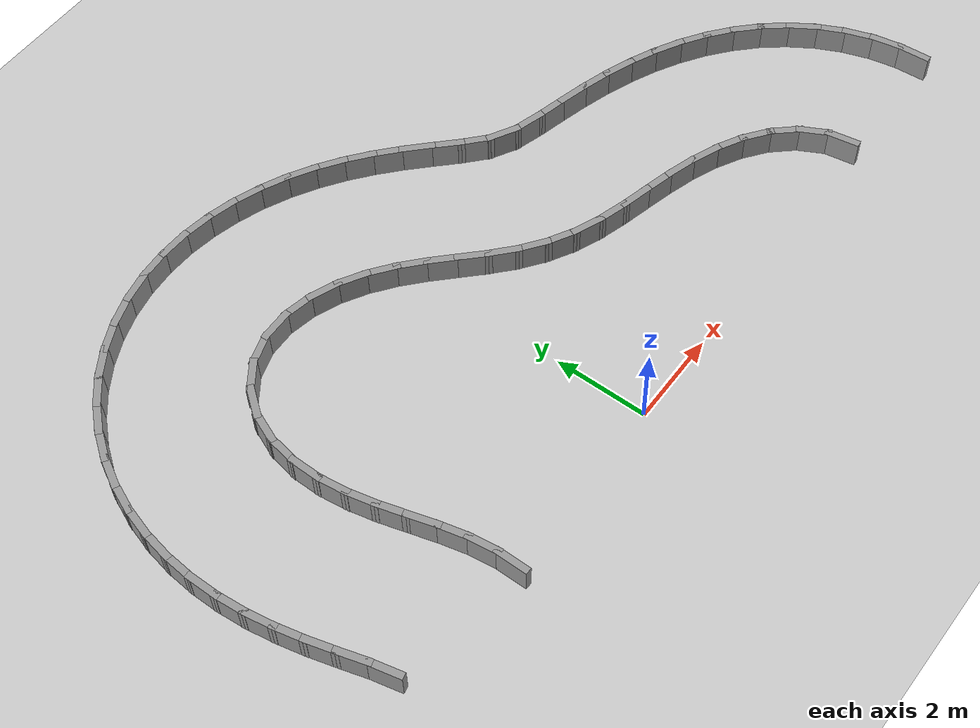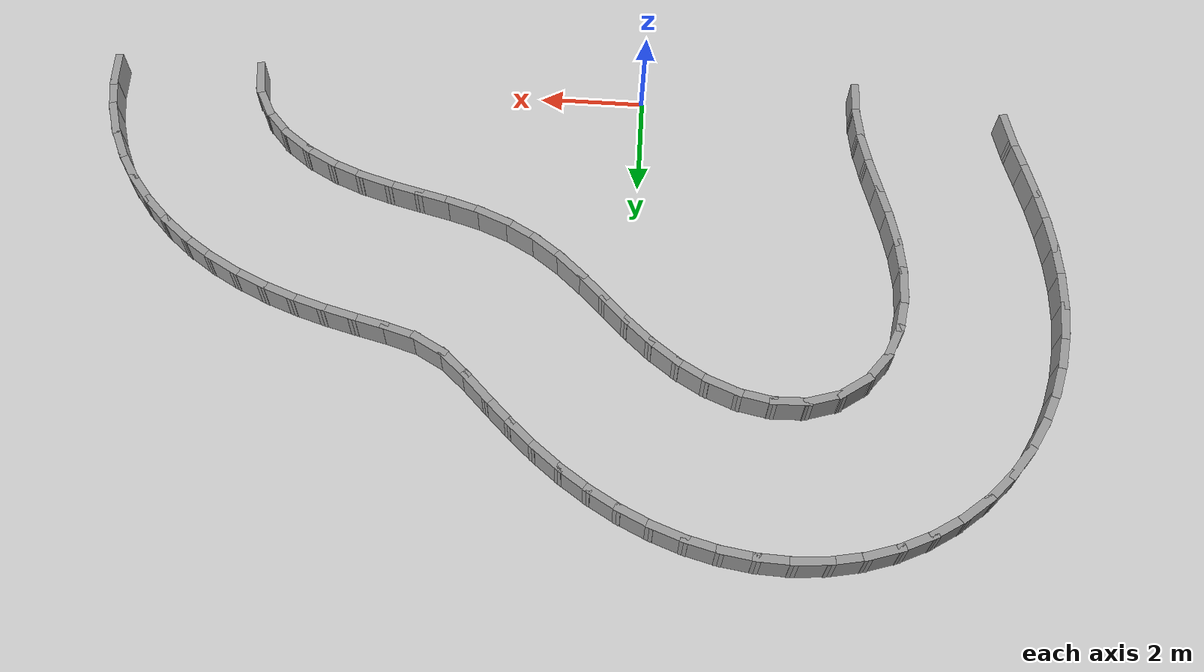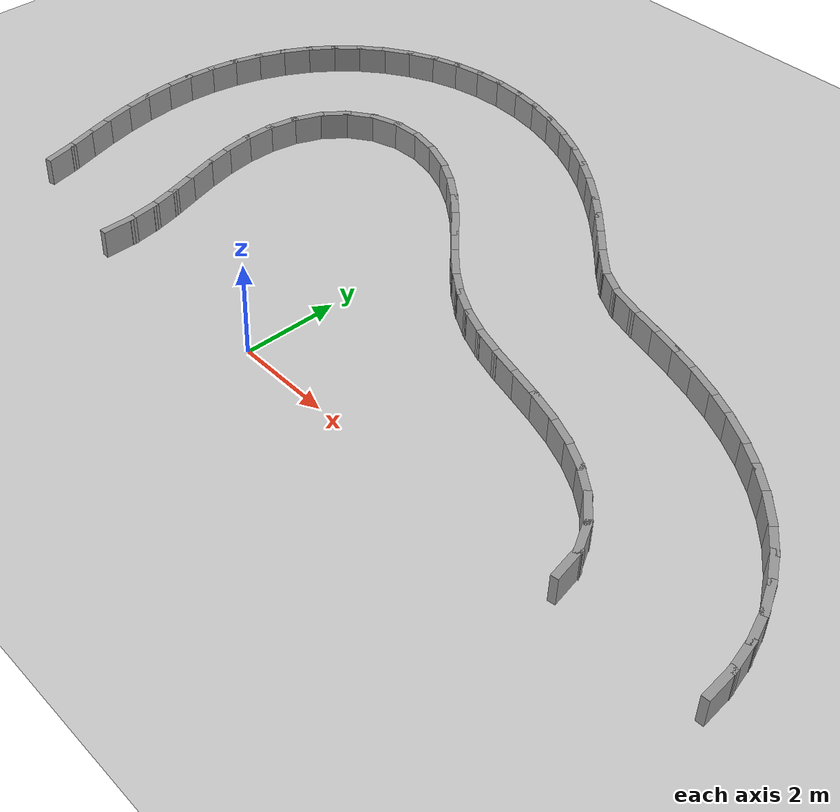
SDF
<sdf version="1.7">
 <world name="default">
  <model name="ground_plane">
   <static>1</static>
   <link name="link">
    <collision name="collision">
     <geometry><plane><normal>0 0 1</normal><size>100 100</size></plane></geometry>
     <surface><friction><ode><mu>100</mu><mu2>50</mu2></ode></friction></surface>
    </collision>
    <visual name="visual">
     <cast_shadows>0</cast_shadows>
     <geometry><plane><normal>0 0 1</normal><size>100 100</size></plane></geometry>
     <material>
      <script><uri>file://media/materials/scripts/gazebo.material</uri><name>Gazebo/Grey</name></script>
     </material>
    </visual>
   </link>
  </model>
  <model name="rand_lobed_09">
   <link name="Wall_0">
    <collision name="Wall_0_Collision">
     <geometry><box><size>0.7471 0.1500 0.6000</size></box></geometry>
     <pose>0 0 0.3000 0 -0 0</pose>
    </collision>
    <visual name="Wall_0_Visual">
     <pose>0 0 0.3000 0 -0 0</pose>
     <geometry><box><size>0.7471 0.1500 0.6000</size></box></geometry>
     <material>
      <script><uri>file://media/materials/scripts/gazebo.material</uri><name>Gazebo/Grey</name></script>
      <ambient>1 1 1 1</ambient>
     </material>
    </visual>
    <pose>7.5078 0.2942 0 0 -0 1.74248</pose>
   </link>
   <link name="Wall_1">
    <collision name="Wall_1_Collision">
     <geometry><box><size>0.7480 0.1500 0.6000</size></box></geometry>
     <pose>0 0 0.3000 0 -0 0</pose>
    </collision>
    <visual name="Wall_1_Visual">
     <pose>0 0 0.3000 0 -0 0</pose>
     <geometry><box><size>0.7480 0.1500 0.6000</size></box></geometry>
     <material>
      <script><uri>file://media/materials/scripts/gazebo.material</uri><name>Gazebo/Grey</name></script>
      <ambient>1 1 1 1</ambient>
     </material>
    </visual>
    <pose>7.3180 0.8532 0 0 -0 2.05335</pose>
   </link>
   <link name="Wall_2">
    <collision name="Wall_2_Collision">
     <geometry><box><size>0.7488 0.1500 0.6000</size></box></geometry>
     <pose>0 0 0.3000 0 -0 0</pose>
    </collision>
    <visual name="Wall_2_Visual">
     <pose>0 0 0.3000 0 -0 0</pose>
     <geometry><box><size>0.7488 0.1500 0.6000</size></box></geometry>
     <material>
      <script><uri>file://media/materials/scripts/gazebo.material</uri><name>Gazebo/Grey</name></script>
      <ambient>1 1 1 1</ambient>
     </material>
    </visual>
    <pose>6.9795 1.3411 0 0 -0 2.30128</pose>
   </link>
   <link name="Wall_3">
    <collision name="Wall_3_Collision">
     <geometry><box><size>0.7493 0.1500 0.6000</size></box></geometry>
     <pose>0 0 0.3000 0 -0 0</pose>
    </collision>
    <visual name="Wall_3_Visual">
     <pose>0 0 0.3000 0 -0 0</pose>
     <geometry><box><size>0.7493 0.1500 0.6000</size></box></geometry>
     <material>
      <script><uri>file://media/materials/scripts/gazebo.material</uri><name>Gazebo/Grey</name></script>
      <ambient>1 1 1 1</ambient>
     </material>
    </visual>
    <pose>6.5408 1.7450 0 0 -0 2.49363</pose>
   </link>
   <link name="Wall_4">
    <collision name="Wall_4_Collision">
     <geometry><box><size>0.7496 0.1500 0.6000</size></box></geometry>
     <pose>0 0 0.3000 0 -0 0</pose>
    </collision>
    <visual name="Wall_4_Visual">
     <pose>0 0 0.3000 0 -0 0</pose>
     <geometry><box><size>0.7496 0.1500 0.6000</size></box></geometry>
     <material>
      <script><uri>file://media/materials/scripts/gazebo.material</uri><name>Gazebo/Grey</name></script>
      <ambient>1 1 1 1</ambient>
     </material>
    </visual>
    <pose>6.0385 2.0689 0 0 -0 2.64404</pose>
   </link>
   <link name="Wall_5">
    <collision name="Wall_5_Collision">
     <geometry><box><size>0.7497 0.1500 0.6000</size></box></geometry>
     <pose>0 0 0.3000 0 -0 0</pose>
    </collision>
    <visual name="Wall_5_Visual">
     <pose>0 0 0.3000 0 -0 0</pose>
     <geometry><box><size>0.7497 0.1500 0.6000</size></box></geometry>
     <material>
      <script><uri>file://media/materials/scripts/gazebo.material</uri><name>Gazebo/Grey</name></script>
      <ambient>1 1 1 1</ambient>
     </material>
    </visual>
    <pose>5.4967 2.3235 0 0 -0 2.76055</pose>
   </link>
   <link name="Wall_6">
    <collision name="Wall_6_Collision">
     <geometry><box><size>0.7499 0.1500 0.6000</size></box></geometry>
     <pose>0 0 0.3000 0 -0 0</pose>
    </collision>
    <visual name="Wall_6_Visual">
     <pose>0 0 0.3000 0 -0 0</pose>
     <geometry><box><size>0.7499 0.1500 0.6000</size></box></geometry>
     <material>
      <script><uri>file://media/materials/scripts/gazebo.material</uri><name>Gazebo/Grey</name></script>
      <ambient>1 1 1 1</ambient>
     </material>
    </visual>
    <pose>4.9315 2.5226 0 0 -0 2.84526</pose>
   </link>
   <link name="Wall_7">
    <collision name="Wall_7_Collision">
     <geometry><box><size>0.7500 0.1500 0.6000</size></box></geometry>
     <pose>0 0 0.3000 0 -0 0</pose>
    </collision>
    <visual name="Wall_7_Visual">
     <pose>0 0 0.3000 0 -0 0</pose>
     <geometry><box><size>0.7500 0.1500 0.6000</size></box></geometry>
     <material>
      <script><uri>file://media/materials/scripts/gazebo.material</uri><name>Gazebo/Grey</name></script>
      <ambient>1 1 1 1</ambient>
     </material>
    </visual>
    <pose>4.3537 2.6837 0 0 -0 2.89428</pose>
   </link>
   <link name="Wall_8">
    <collision name="Wall_8_Collision">
     <geometry><box><size>0.7500 0.1500 0.6000</size></box></geometry>
     <pose>0 0 0.3000 0 -0 0</pose>
    </collision>
    <visual name="Wall_8_Visual">
     <pose>0 0 0.3000 0 -0 0</pose>
     <geometry><box><size>0.7500 0.1500 0.6000</size></box></geometry>
     <material>
      <script><uri>file://media/materials/scripts/gazebo.material</uri><name>Gazebo/Grey</name></script>
      <ambient>1 1 1 1</ambient>
     </material>
    </visual>
    <pose>3.7717 2.8291 0 0 -0 2.89908</pose>
   </link>
   <link name="Wall_9">
    <collision name="Wall_9_Collision">
     <geometry><box><size>0.7499 0.1500 0.6000</size></box></geometry>
     <pose>0 0 0.3000 0 -0 0</pose>
    </collision>
    <visual name="Wall_9_Visual">
     <pose>0 0 0.3000 0 -0 0</pose>
     <geometry><box><size>0.7499 0.1500 0.6000</size></box></geometry>
     <material>
      <script><uri>file://media/materials/scripts/gazebo.material</uri><name>Gazebo/Grey</name></script>
      <ambient>1 1 1 1</ambient>
     </material>
    </visual>
    <pose>3.1930 2.9868 0 0 -0 2.85210</pose>
   </link>
   <link name="Wall_10">
    <collision name="Wall_10_Collision">
     <geometry><box><size>0.7497 0.1500 0.6000</size></box></geometry>
     <pose>0 0 0.3000 0 -0 0</pose>
    </collision>
    <visual name="Wall_10_Visual">
     <pose>0 0 0.3000 0 -0 0</pose>
     <geometry><box><size>0.7497 0.1500 0.6000</size></box></geometry>
     <material>
      <script><uri>file://media/materials/scripts/gazebo.material</uri><name>Gazebo/Grey</name></script>
      <ambient>1 1 1 1</ambient>
     </material>
    </visual>
    <pose>2.6277 3.1850 0 0 -0 2.75660</pose>
   </link>
   <link name="Wall_11">
    <collision name="Wall_11_Collision">
     <geometry><box><size>0.7496 0.1500 0.6000</size></box></geometry>
     <pose>0 0 0.3000 0 -0 0</pose>
    </collision>
    <visual name="Wall_11_Visual">
     <pose>0 0 0.3000 0 -0 0</pose>
     <geometry><box><size>0.7496 0.1500 0.6000</size></box></geometry>
     <material>
      <script><uri>file://media/materials/scripts/gazebo.material</uri><name>Gazebo/Grey</name></script>
      <ambient>1 1 1 1</ambient>
     </material>
    </visual>
    <pose>2.0882 3.4440 0 0 -0 2.63130</pose>
   </link>
   <link name="Wall_12">
    <collision name="Wall_12_Collision">
     <geometry><box><size>0.7497 0.1500 0.6000</size></box></geometry>
     <pose>0 0 0.3000 0 -0 0</pose>
    </collision>
    <visual name="Wall_12_Visual">
     <pose>0 0 0.3000 0 -0 0</pose>
     <geometry><box><size>0.7497 0.1500 0.6000</size></box></geometry>
     <material>
      <script><uri>file://media/materials/scripts/gazebo.material</uri><name>Gazebo/Grey</name></script>
      <ambient>1 1 1 1</ambient>
     </material>
    </visual>
    <pose>1.5855 3.7688 0 0 -0 2.50470</pose>
   </link>
   <link name="Wall_13">
    <collision name="Wall_13_Collision">
     <geometry><box><size>0.7499 0.1500 0.6000</size></box></geometry>
     <pose>0 0 0.3000 0 -0 0</pose>
    </collision>
    <visual name="Wall_13_Visual">
     <pose>0 0 0.3000 0 -0 0</pose>
     <geometry><box><size>0.7499 0.1500 0.6000</size></box></geometry>
     <material>
      <script><uri>file://media/materials/scripts/gazebo.material</uri><name>Gazebo/Grey</name></script>
      <ambient>1 1 1 1</ambient>
     </material>
    </visual>
    <pose>1.1221 4.1483 0 0 -0 2.40606</pose>
   </link>
   <link name="Wall_14">
    <collision name="Wall_14_Collision">
     <geometry><box><size>0.7500 0.1500 0.6000</size></box></geometry>
     <pose>0 0 0.3000 0 -0 0</pose>
    </collision>
    <visual name="Wall_14_Visual">
     <pose>0 0 0.3000 0 -0 0</pose>
     <geometry><box><size>0.7500 0.1500 0.6000</size></box></geometry>
     <material>
      <script><uri>file://media/materials/scripts/gazebo.material</uri><name>Gazebo/Grey</name></script>
      <ambient>1 1 1 1</ambient>
     </material>
    </visual>
    <pose>0.6876 4.5617 0 0 -0 2.35609</pose>
   </link>
   <link name="Wall_15">
    <collision name="Wall_15_Collision">
     <geometry><box><size>0.7500 0.1500 0.6000</size></box></geometry>
     <pose>0 0 0.3000 0 -0 0</pose>
    </collision>
    <visual name="Wall_15_Visual">
     <pose>0 0 0.3000 0 -0 0</pose>
     <geometry><box><size>0.7500 0.1500 0.6000</size></box></geometry>
     <material>
      <script><uri>file://media/materials/scripts/gazebo.material</uri><name>Gazebo/Grey</name></script>
      <ambient>1 1 1 1</ambient>
     </material>
    </visual>
    <pose>0.2626 4.9852 0 0 -0 2.35991</pose>
   </link>
   <link name="Wall_16">
    <collision name="Wall_16_Collision">
     <geometry><box><size>0.7499 0.1500 0.6000</size></box></geometry>
     <pose>0 0 0.3000 0 -0 0</pose>
    </collision>
    <visual name="Wall_16_Visual">
     <pose>0 0 0.3000 0 -0 0</pose>
     <geometry><box><size>0.7499 0.1500 0.6000</size></box></geometry>
     <material>
      <script><uri>file://media/materials/scripts/gazebo.material</uri><name>Gazebo/Grey</name></script>
      <ambient>1 1 1 1</ambient>
     </material>
    </visual>
    <pose>-0.1735 5.3969 0 0 -0 2.41019</pose>
   </link>
   <link name="Wall_17">
    <collision name="Wall_17_Collision">
     <geometry><box><size>0.7497 0.1500 0.6000</size></box></geometry>
     <pose>0 0 0.3000 0 -0 0</pose>
    </collision>
    <visual name="Wall_17_Visual">
     <pose>0 0 0.3000 0 -0 0</pose>
     <geometry><box><size>0.7497 0.1500 0.6000</size></box></geometry>
     <material>
      <script><uri>file://media/materials/scripts/gazebo.material</uri><name>Gazebo/Grey</name></script>
      <ambient>1 1 1 1</ambient>
     </material>
    </visual>
    <pose>-0.6365 5.7773 0 0 -0 2.49728</pose>
   </link>
   <link name="Wall_18">
    <collision name="Wall_18_Collision">
     <geometry><box><size>0.7496 0.1500 0.6000</size></box></geometry>
     <pose>0 0 0.3000 0 -0 0</pose>
    </collision>
    <visual name="Wall_18_Visual">
     <pose>0 0 0.3000 0 -0 0</pose>
     <geometry><box><size>0.7496 0.1500 0.6000</size></box></geometry>
     <material>
      <script><uri>file://media/materials/scripts/gazebo.material</uri><name>Gazebo/Grey</name></script>
      <ambient>1 1 1 1</ambient>
     </material>
    </visual>
    <pose>-1.1355 6.1080 0 0 -0 2.61554</pose>
   </link>
   <link name="Wall_19">
    <collision name="Wall_19_Collision">
     <geometry><box><size>0.7493 0.1500 0.6000</size></box></geometry>
     <pose>0 0 0.3000 0 -0 0</pose>
    </collision>
    <visual name="Wall_19_Visual">
     <pose>0 0 0.3000 0 -0 0</pose>
     <geometry><box><size>0.7493 0.1500 0.6000</size></box></geometry>
     <material>
      <script><uri>file://media/materials/scripts/gazebo.material</uri><name>Gazebo/Grey</name></script>
      <ambient>1 1 1 1</ambient>
     </material>
    </visual>
    <pose>-1.6734 6.3688 0 0 -0 2.76470</pose>
   </link>
   <link name="Wall_20">
    <collision name="Wall_20_Collision">
     <geometry><box><size>0.7490 0.1500 0.6000</size></box></geometry>
     <pose>0 0 0.3000 0 -0 0</pose>
    </collision>
    <visual name="Wall_20_Visual">
     <pose>0 0 0.3000 0 -0 0</pose>
     <geometry><box><size>0.7490 0.1500 0.6000</size></box></geometry>
     <material>
      <script><uri>file://media/materials/scripts/gazebo.material</uri><name>Gazebo/Grey</name></script>
      <ambient>1 1 1 1</ambient>
     </material>
    </visual>
    <pose>-2.2459 6.5364 0 0 -0 2.94902</pose>
   </link>
   <link name="Wall_21">
    <collision name="Wall_21_Collision">
     <geometry><box><size>0.7484 0.1500 0.6000</size></box></geometry>
     <pose>0 0 0.3000 0 -0 0</pose>
    </collision>
    <visual name="Wall_21_Visual">
     <pose>0 0 0.3000 0 -0 0</pose>
     <geometry><box><size>0.7484 0.1500 0.6000</size></box></geometry>
     <material>
      <script><uri>file://media/materials/scripts/gazebo.material</uri><name>Gazebo/Grey</name></script>
      <ambient>1 1 1 1</ambient>
     </material>
    </visual>
    <pose>-2.8389 6.5833 0 0 -0 -3.10686</pose>
   </link>
   <link name="Wall_22">
    <collision name="Wall_22_Collision">
     <geometry><box><size>0.7478 0.1500 0.6000</size></box></geometry>
     <pose>0 0 0.3000 0 -0 0</pose>
    </collision>
    <visual name="Wall_22_Visual">
     <pose>0 0 0.3000 0 -0 0</pose>
     <geometry><box><size>0.7478 0.1500 0.6000</size></box></geometry>
     <material>
      <script><uri>file://media/materials/scripts/gazebo.material</uri><name>Gazebo/Grey</name></script>
      <ambient>1 1 1 1</ambient>
     </material>
    </visual>
    <pose>-3.4226 6.4817 0 0 -0 -2.83146</pose>
   </link>
   <link name="Wall_23">
    <collision name="Wall_23_Collision">
     <geometry><box><size>0.7475 0.1500 0.6000</size></box></geometry>
     <pose>0 0 0.3000 0 -0 0</pose>
    </collision>
    <visual name="Wall_23_Visual">
     <pose>0 0 0.3000 0 -0 0</pose>
     <geometry><box><size>0.7475 0.1500 0.6000</size></box></geometry>
     <material>
      <script><uri>file://media/materials/scripts/gazebo.material</uri><name>Gazebo/Grey</name></script>
      <ambient>1 1 1 1</ambient>
     </material>
    </visual>
    <pose>-3.9504 6.2169 0 0 -0 -2.52177</pose>
   </link>
   <link name="Wall_24">
    <collision name="Wall_24_Collision">
     <geometry><box><size>0.7479 0.1500 0.6000</size></box></geometry>
     <pose>0 0 0.3000 0 -0 0</pose>
    </collision>
    <visual name="Wall_24_Visual">
     <pose>0 0 0.3000 0 -0 0</pose>
     <geometry><box><size>0.7479 0.1500 0.6000</size></box></geometry>
     <material>
      <script><uri>file://media/materials/scripts/gazebo.material</uri><name>Gazebo/Grey</name></script>
      <ambient>1 1 1 1</ambient>
     </material>
    </visual>
    <pose>-4.3738 5.8048 0 0 -0 -2.21781</pose>
   </link>
   <link name="Wall_25">
    <collision name="Wall_25_Collision">
     <geometry><box><size>0.7486 0.1500 0.6000</size></box></geometry>
     <pose>0 0 0.3000 0 -0 0</pose>
    </collision>
    <visual name="Wall_25_Visual">
     <pose>0 0 0.3000 0 -0 0</pose>
     <geometry><box><size>0.7486 0.1500 0.6000</size></box></geometry>
     <material>
      <script><uri>file://media/materials/scripts/gazebo.material</uri><name>Gazebo/Grey</name></script>
      <ambient>1 1 1 1</ambient>
     </material>
    </visual>
    <pose>-4.6664 5.2889 0 0 -0 -1.95575</pose>
   </link>
   <link name="Wall_26">
    <collision name="Wall_26_Collision">
     <geometry><box><size>0.7491 0.1500 0.6000</size></box></geometry>
     <pose>0 0 0.3000 0 -0 0</pose>
    </collision>
    <visual name="Wall_26_Visual">
     <pose>0 0 0.3000 0 -0 0</pose>
     <geometry><box><size>0.7491 0.1500 0.6000</size></box></geometry>
     <material>
      <script><uri>file://media/materials/scripts/gazebo.material</uri><name>Gazebo/Grey</name></script>
      <ambient>1 1 1 1</ambient>
     </material>
    </visual>
    <pose>-4.8304 4.7164 0 0 -0 -1.74390</pose>
   </link>
   <link name="Wall_27">
    <collision name="Wall_27_Collision">
     <geometry><box><size>0.7494 0.1500 0.6000</size></box></geometry>
     <pose>0 0 0.3000 0 -0 0</pose>
    </collision>
    <visual name="Wall_27_Visual">
     <pose>0 0 0.3000 0 -0 0</pose>
     <geometry><box><size>0.7494 0.1500 0.6000</size></box></geometry>
     <material>
      <script><uri>file://media/materials/scripts/gazebo.material</uri><name>Gazebo/Grey</name></script>
      <ambient>1 1 1 1</ambient>
     </material>
    </visual>
    <pose>-4.8835 4.1216 0 0 -0 -1.57599</pose>
   </link>
   <link name="Wall_28">
    <collision name="Wall_28_Collision">
     <geometry><box><size>0.7497 0.1500 0.6000</size></box></geometry>
     <pose>0 0 0.3000 0 -0 0</pose>
    </collision>
    <visual name="Wall_28_Visual">
     <pose>0 0 0.3000 0 -0 0</pose>
     <geometry><box><size>0.7497 0.1500 0.6000</size></box></geometry>
     <material>
      <script><uri>file://media/materials/scripts/gazebo.material</uri><name>Gazebo/Grey</name></script>
      <ambient>1 1 1 1</ambient>
     </material>
    </visual>
    <pose>-4.8476 3.5244 0 0 -0 -1.44555</pose>
   </link>
   <link name="Wall_29">
    <collision name="Wall_29_Collision">
     <geometry><box><size>0.7499 0.1500 0.6000</size></box></geometry>
     <pose>0 0 0.3000 0 -0 0</pose>
    </collision>
    <visual name="Wall_29_Visual">
     <pose>0 0 0.3000 0 -0 0</pose>
     <geometry><box><size>0.7499 0.1500 0.6000</size></box></geometry>
     <material>
      <script><uri>file://media/materials/scripts/gazebo.material</uri><name>Gazebo/Grey</name></script>
      <ambient>1 1 1 1</ambient>
     </material>
    </visual>
    <pose>-4.7447 2.9342 0 0 -0 -1.35069</pose>
   </link>
   <link name="Wall_30">
    <collision name="Wall_30_Collision">
     <geometry><box><size>0.7500 0.1500 0.6000</size></box></geometry>
     <pose>0 0 0.3000 0 -0 0</pose>
    </collision>
    <visual name="Wall_30_Visual">
     <pose>0 0 0.3000 0 -0 0</pose>
     <geometry><box><size>0.7500 0.1500 0.6000</size></box></geometry>
     <material>
      <script><uri>file://media/materials/scripts/gazebo.material</uri><name>Gazebo/Grey</name></script>
      <ambient>1 1 1 1</ambient>
     </material>
    </visual>
    <pose>-4.5976 2.3529 0 0 -0 -1.29547</pose>
   </link>
   <link name="Wall_31">
    <collision name="Wall_31_Collision">
     <geometry><box><size>0.7500 0.1500 0.6000</size></box></geometry>
     <pose>0 0 0.3000 0 -0 0</pose>
    </collision>
    <visual name="Wall_31_Visual">
     <pose>0 0 0.3000 0 -0 0</pose>
     <geometry><box><size>0.7500 0.1500 0.6000</size></box></geometry>
     <material>
      <script><uri>file://media/materials/scripts/gazebo.material</uri><name>Gazebo/Grey</name></script>
      <ambient>1 1 1 1</ambient>
     </material>
    </visual>
    <pose>-4.4326 1.7760 0 0 -0 -1.28864</pose>
   </link>
   <link name="Wall_32">
    <collision name="Wall_32_Collision">
     <geometry><box><size>0.7499 0.1500 0.6000</size></box></geometry>
     <pose>0 0 0.3000 0 -0 0</pose>
    </collision>
    <visual name="Wall_32_Visual">
     <pose>0 0 0.3000 0 -0 0</pose>
     <geometry><box><size>0.7499 0.1500 0.6000</size></box></geometry>
     <material>
      <script><uri>file://media/materials/scripts/gazebo.material</uri><name>Gazebo/Grey</name></script>
      <ambient>1 1 1 1</ambient>
     </material>
    </visual>
    <pose>-4.2797 1.1961 0 0 -0 -1.33762</pose>
   </link>
   <link name="Wall_33">
    <collision name="Wall_33_Collision">
     <geometry><box><size>0.7496 0.1500 0.6000</size></box></geometry>
     <pose>0 0 0.3000 0 -0 0</pose>
    </collision>
    <visual name="Wall_33_Visual">
     <pose>0 0 0.3000 0 -0 0</pose>
     <geometry><box><size>0.7496 0.1500 0.6000</size></box></geometry>
     <material>
      <script><uri>file://media/materials/scripts/gazebo.material</uri><name>Gazebo/Grey</name></script>
      <ambient>1 1 1 1</ambient>
     </material>
    </visual>
    <pose>-4.1707 0.6071 0 0 -0 -1.43780</pose>
   </link>
   <link name="Wall_34">
    <collision name="Wall_34_Collision">
     <geometry><box><size>0.7495 0.1500 0.6000</size></box></geometry>
     <pose>0 0 0.3000 0 -0 0</pose>
    </collision>
    <visual name="Wall_34_Visual">
     <pose>0 0 0.3000 0 -0 0</pose>
     <geometry><box><size>0.7495 0.1500 0.6000</size></box></geometry>
     <material>
      <script><uri>file://media/materials/scripts/gazebo.material</uri><name>Gazebo/Grey</name></script>
      <ambient>1 1 1 1</ambient>
     </material>
    </visual>
    <pose>-4.1302 0.0102 0 0 -0 -1.56844</pose>
   </link>
   <link name="Wall_69">
    <collision name="Wall_69_Collision">
     <geometry><box><size>0.7496 0.1500 0.6000</size></box></geometry>
     <pose>0 0 0.3000 0 -0 0</pose>
    </collision>
    <visual name="Wall_69_Visual">
     <pose>0 0 0.3000 0 -0 0</pose>
     <geometry><box><size>0.7496 0.1500 0.6000</size></box></geometry>
     <material>
      <script><uri>file://media/materials/scripts/gazebo.material</uri><name>Gazebo/Grey</name></script>
      <ambient>1 1 1 1</ambient>
     </material>
    </visual>
    <pose>10.3810 0.2991 0 0 -0 1.63671</pose>
   </link>
   <link name="Wall_70">
    <collision name="Wall_70_Collision">
     <geometry><box><size>0.7496 0.1500 0.6000</size></box></geometry>
     <pose>0 0 0.3000 0 -0 0</pose>
    </collision>
    <visual name="Wall_70_Visual">
     <pose>0 0 0.3000 0 -0 0</pose>
     <geometry><box><size>0.7496 0.1500 0.6000</size></box></geometry>
     <material>
      <script><uri>file://media/materials/scripts/gazebo.material</uri><name>Gazebo/Grey</name></script>
      <ambient>1 1 1 1</ambient>
     </material>
    </visual>
    <pose>10.3028 0.8923 0 0 -0 1.76713</pose>
   </link>
   <link name="Wall_71">
    <collision name="Wall_71_Collision">
     <geometry><box><size>0.7496 0.1500 0.6000</size></box></geometry>
     <pose>0 0 0.3000 0 -0 0</pose>
    </collision>
    <visual name="Wall_71_Visual">
     <pose>0 0 0.3000 0 -0 0</pose>
     <geometry><box><size>0.7496 0.1500 0.6000</size></box></geometry>
     <material>
      <script><uri>file://media/materials/scripts/gazebo.material</uri><name>Gazebo/Grey</name></script>
      <ambient>1 1 1 1</ambient>
     </material>
    </visual>
    <pose>10.1486 1.4704 0 0 -0 1.89556</pose>
   </link>
   <link name="Wall_72">
    <collision name="Wall_72_Collision">
     <geometry><box><size>0.7496 0.1500 0.6000</size></box></geometry>
     <pose>0 0 0.3000 0 -0 0</pose>
    </collision>
    <visual name="Wall_72_Visual">
     <pose>0 0 0.3000 0 -0 0</pose>
     <geometry><box><size>0.7496 0.1500 0.6000</size></box></geometry>
     <material>
      <script><uri>file://media/materials/scripts/gazebo.material</uri><name>Gazebo/Grey</name></script>
      <ambient>1 1 1 1</ambient>
     </material>
    </visual>
    <pose>9.9229 2.0247 0 0 -0 2.01971</pose>
   </link>
   <link name="Wall_73">
    <collision name="Wall_73_Collision">
     <geometry><box><size>0.7497 0.1500 0.6000</size></box></geometry>
     <pose>0 0 0.3000 0 -0 0</pose>
    </collision>
    <visual name="Wall_73_Visual">
     <pose>0 0 0.3000 0 -0 0</pose>
     <geometry><box><size>0.7497 0.1500 0.6000</size></box></geometry>
     <material>
      <script><uri>file://media/materials/scripts/gazebo.material</uri><name>Gazebo/Grey</name></script>
      <ambient>1 1 1 1</ambient>
     </material>
    </visual>
    <pose>9.6314 2.5475 0 0 -0 2.13883</pose>
   </link>
   <link name="Wall_74">
    <collision name="Wall_74_Collision">
     <geometry><box><size>0.7497 0.1500 0.6000</size></box></geometry>
     <pose>0 0 0.3000 0 -0 0</pose>
    </collision>
    <visual name="Wall_74_Visual">
     <pose>0 0 0.3000 0 -0 0</pose>
     <geometry><box><size>0.7497 0.1500 0.6000</size></box></geometry>
     <material>
      <script><uri>file://media/materials/scripts/gazebo.material</uri><name>Gazebo/Grey</name></script>
      <ambient>1 1 1 1</ambient>
     </material>
    </visual>
    <pose>9.2813 3.0332 0 0 -0 2.25221</pose>
   </link>
   <link name="Wall_75">
    <collision name="Wall_75_Collision">
     <geometry><box><size>0.7497 0.1500 0.6000</size></box></geometry>
     <pose>0 0 0.3000 0 -0 0</pose>
    </collision>
    <visual name="Wall_75_Visual">
     <pose>0 0 0.3000 0 -0 0</pose>
     <geometry><box><size>0.7497 0.1500 0.6000</size></box></geometry>
     <material>
      <script><uri>file://media/materials/scripts/gazebo.material</uri><name>Gazebo/Grey</name></script>
      <ambient>1 1 1 1</ambient>
     </material>
    </visual>
    <pose>8.8798 3.4775 0 0 -0 2.35896</pose>
   </link>
   <link name="Wall_76">
    <collision name="Wall_76_Collision">
     <geometry><box><size>0.7498 0.1500 0.6000</size></box></geometry>
     <pose>0 0 0.3000 0 -0 0</pose>
    </collision>
    <visual name="Wall_76_Visual">
     <pose>0 0 0.3000 0 -0 0</pose>
     <geometry><box><size>0.7498 0.1500 0.6000</size></box></geometry>
     <material>
      <script><uri>file://media/materials/scripts/gazebo.material</uri><name>Gazebo/Grey</name></script>
      <ambient>1 1 1 1</ambient>
     </material>
    </visual>
    <pose>8.4345 3.8781 0 0 -0 2.45901</pose>
   </link>
   <link name="Wall_77">
    <collision name="Wall_77_Collision">
     <geometry><box><size>0.7498 0.1500 0.6000</size></box></geometry>
     <pose>0 0 0.3000 0 -0 0</pose>
    </collision>
    <visual name="Wall_77_Visual">
     <pose>0 0 0.3000 0 -0 0</pose>
     <geometry><box><size>0.7498 0.1500 0.6000</size></box></geometry>
     <material>
      <script><uri>file://media/materials/scripts/gazebo.material</uri><name>Gazebo/Grey</name></script>
      <ambient>1 1 1 1</ambient>
     </material>
    </visual>
    <pose>7.9525 4.2340 0 0 -0 2.55198</pose>
   </link>
   <link name="Wall_78">
    <collision name="Wall_78_Collision">
     <geometry><box><size>0.7498 0.1500 0.6000</size></box></geometry>
     <pose>0 0 0.3000 0 -0 0</pose>
    </collision>
    <visual name="Wall_78_Visual">
     <pose>0 0 0.3000 0 -0 0</pose>
     <geometry><box><size>0.7498 0.1500 0.6000</size></box></geometry>
     <material>
      <script><uri>file://media/materials/scripts/gazebo.material</uri><name>Gazebo/Grey</name></script>
      <ambient>1 1 1 1</ambient>
     </material>
    </visual>
    <pose>7.4406 4.5456 0 0 -0 2.63774</pose>
   </link>
   <link name="Wall_79">
    <collision name="Wall_79_Collision">
     <geometry><box><size>0.7499 0.1500 0.6000</size></box></geometry>
     <pose>0 0 0.3000 0 -0 0</pose>
    </collision>
    <visual name="Wall_79_Visual">
     <pose>0 0 0.3000 0 -0 0</pose>
     <geometry><box><size>0.7499 0.1500 0.6000</size></box></geometry>
     <material>
      <script><uri>file://media/materials/scripts/gazebo.material</uri><name>Gazebo/Grey</name></script>
      <ambient>1 1 1 1</ambient>
     </material>
    </visual>
    <pose>6.9048 4.8143 0 0 -0 2.71577</pose>
   </link>
   <link name="Wall_80">
    <collision name="Wall_80_Collision">
     <geometry><box><size>0.7499 0.1500 0.6000</size></box></geometry>
     <pose>0 0 0.3000 0 -0 0</pose>
    </collision>
    <visual name="Wall_80_Visual">
     <pose>0 0 0.3000 0 -0 0</pose>
     <geometry><box><size>0.7499 0.1500 0.6000</size></box></geometry>
     <material>
      <script><uri>file://media/materials/scripts/gazebo.material</uri><name>Gazebo/Grey</name></script>
      <ambient>1 1 1 1</ambient>
     </material>
    </visual>
    <pose>6.3505 5.0428 0 0 -0 2.78526</pose>
   </link>
   <link name="Wall_81">
    <collision name="Wall_81_Collision">
     <geometry><box><size>0.7499 0.1500 0.6000</size></box></geometry>
     <pose>0 0 0.3000 0 -0 0</pose>
    </collision>
    <visual name="Wall_81_Visual">
     <pose>0 0 0.3000 0 -0 0</pose>
     <geometry><box><size>0.7499 0.1500 0.6000</size></box></geometry>
     <material>
      <script><uri>file://media/materials/scripts/gazebo.material</uri><name>Gazebo/Grey</name></script>
      <ambient>1 1 1 1</ambient>
     </material>
    </visual>
    <pose>5.7827 5.2354 0 0 -0 2.84386</pose>
   </link>
   <link name="Wall_82">
    <collision name="Wall_82_Collision">
     <geometry><box><size>0.7500 0.1500 0.6000</size></box></geometry>
     <pose>0 0 0.3000 0 -0 0</pose>
    </collision>
    <visual name="Wall_82_Visual">
     <pose>0 0 0.3000 0 -0 0</pose>
     <geometry><box><size>0.7500 0.1500 0.6000</size></box></geometry>
     <material>
      <script><uri>file://media/materials/scripts/gazebo.material</uri><name>Gazebo/Grey</name></script>
      <ambient>1 1 1 1</ambient>
     </material>
    </visual>
    <pose>5.2056 5.3990 0 0 -0 2.88690</pose>
   </link>
   <link name="Wall_83">
    <collision name="Wall_83_Collision">
     <geometry><box><size>0.7500 0.1500 0.6000</size></box></geometry>
     <pose>0 0 0.3000 0 -0 0</pose>
    </collision>
    <visual name="Wall_83_Visual">
     <pose>0 0 0.3000 0 -0 0</pose>
     <geometry><box><size>0.7500 0.1500 0.6000</size></box></geometry>
     <material>
      <script><uri>file://media/materials/scripts/gazebo.material</uri><name>Gazebo/Grey</name></script>
      <ambient>1 1 1 1</ambient>
     </material>
    </visual>
    <pose>4.6238 5.5456 0 0 -0 2.90278</pose>
   </link>
   <link name="Wall_84">
    <collision name="Wall_84_Collision">
     <geometry><box><size>0.7497 0.1500 0.6000</size></box></geometry>
     <pose>0 0 0.3000 0 -0 0</pose>
    </collision>
    <visual name="Wall_84_Visual">
     <pose>0 0 0.3000 0 -0 0</pose>
     <geometry><box><size>0.7497 0.1500 0.6000</size></box></geometry>
     <material>
      <script><uri>file://media/materials/scripts/gazebo.material</uri><name>Gazebo/Grey</name></script>
      <ambient>1 1 1 1</ambient>
     </material>
    </visual>
    <pose>4.0446 5.7011 0 0 -0 2.85555</pose>
   </link>
   <link name="Wall_85">
    <collision name="Wall_85_Collision">
     <geometry><box><size>0.7474 0.1500 0.6000</size></box></geometry>
     <pose>0 0 0.3000 0 -0 0</pose>
    </collision>
    <visual name="Wall_85_Visual">
     <pose>0 0 0.3000 0 -0 0</pose>
     <geometry><box><size>0.7474 0.1500 0.6000</size></box></geometry>
     <material>
      <script><uri>file://media/materials/scripts/gazebo.material</uri><name>Gazebo/Grey</name></script>
      <ambient>1 1 1 1</ambient>
     </material>
    </visual>
    <pose>3.4954 5.9300 0 0 -0 2.63769</pose>
   </link>
   <link name="Wall_86">
    <collision name="Wall_86_Collision">
     <geometry><box><size>0.7496 0.1500 0.6000</size></box></geometry>
     <pose>0 0 0.3000 0 -0 0</pose>
    </collision>
    <visual name="Wall_86_Visual">
     <pose>0 0 0.3000 0 -0 0</pose>
     <geometry><box><size>0.7496 0.1500 0.6000</size></box></geometry>
     <material>
      <script><uri>file://media/materials/scripts/gazebo.material</uri><name>Gazebo/Grey</name></script>
      <ambient>1 1 1 1</ambient>
     </material>
    </visual>
    <pose>3.0116 6.2755 0 0 -0 2.40555</pose>
   </link>
   <link name="Wall_87">
    <collision name="Wall_87_Collision">
     <geometry><box><size>0.7500 0.1500 0.6000</size></box></geometry>
     <pose>0 0 0.3000 0 -0 0</pose>
    </collision>
    <visual name="Wall_87_Visual">
     <pose>0 0 0.3000 0 -0 0</pose>
     <geometry><box><size>0.7500 0.1500 0.6000</size></box></geometry>
     <material>
      <script><uri>file://media/materials/scripts/gazebo.material</uri><name>Gazebo/Grey</name></script>
      <ambient>1 1 1 1</ambient>
     </material>
    </visual>
    <pose>2.5782 6.6898 0 0 -0 2.35192</pose>
   </link>
   <link name="Wall_88">
    <collision name="Wall_88_Collision">
     <geometry><box><size>0.7500 0.1500 0.6000</size></box></geometry>
     <pose>0 0 0.3000 0 -0 0</pose>
    </collision>
    <visual name="Wall_88_Visual">
     <pose>0 0 0.3000 0 -0 0</pose>
     <geometry><box><size>0.7500 0.1500 0.6000</size></box></geometry>
     <material>
      <script><uri>file://media/materials/scripts/gazebo.material</uri><name>Gazebo/Grey</name></script>
      <ambient>1 1 1 1</ambient>
     </material>
    </visual>
    <pose>2.1525 7.1126 0 0 -0 2.36713</pose>
   </link>
   <link name="Wall_89">
    <collision name="Wall_89_Collision">
     <geometry><box><size>0.7499 0.1500 0.6000</size></box></geometry>
     <pose>0 0 0.3000 0 -0 0</pose>
    </collision>
    <visual name="Wall_89_Visual">
     <pose>0 0 0.3000 0 -0 0</pose>
     <geometry><box><size>0.7499 0.1500 0.6000</size></box></geometry>
     <material>
      <script><uri>file://media/materials/scripts/gazebo.material</uri><name>Gazebo/Grey</name></script>
      <ambient>1 1 1 1</ambient>
     </material>
    </visual>
    <pose>1.7147 7.5226 0 0 -0 2.41099</pose>
   </link>
   <link name="Wall_90">
    <collision name="Wall_90_Collision">
     <geometry><box><size>0.7499 0.1500 0.6000</size></box></geometry>
     <pose>0 0 0.3000 0 -0 0</pose>
    </collision>
    <visual name="Wall_90_Visual">
     <pose>0 0 0.3000 0 -0 0</pose>
     <geometry><box><size>0.7499 0.1500 0.6000</size></box></geometry>
     <material>
      <script><uri>file://media/materials/scripts/gazebo.material</uri><name>Gazebo/Grey</name></script>
      <ambient>1 1 1 1</ambient>
     </material>
    </visual>
    <pose>1.2564 7.9093 0 0 -0 2.47063</pose>
   </link>
   <link name="Wall_91">
    <collision name="Wall_91_Collision">
     <geometry><box><size>0.7499 0.1500 0.6000</size></box></geometry>
     <pose>0 0 0.3000 0 -0 0</pose>
    </collision>
    <visual name="Wall_91_Visual">
     <pose>0 0 0.3000 0 -0 0</pose>
     <geometry><box><size>0.7499 0.1500 0.6000</size></box></geometry>
     <material>
      <script><uri>file://media/materials/scripts/gazebo.material</uri><name>Gazebo/Grey</name></script>
      <ambient>1 1 1 1</ambient>
     </material>
    </visual>
    <pose>0.7740 8.2653 0 0 -0 2.54082</pose>
   </link>
   <link name="Wall_92">
    <collision name="Wall_92_Collision">
     <geometry><box><size>0.7498 0.1500 0.6000</size></box></geometry>
     <pose>0 0 0.3000 0 -0 0</pose>
    </collision>
    <visual name="Wall_92_Visual">
     <pose>0 0 0.3000 0 -0 0</pose>
     <geometry><box><size>0.7498 0.1500 0.6000</size></box></geometry>
     <material>
      <script><uri>file://media/materials/scripts/gazebo.material</uri><name>Gazebo/Grey</name></script>
      <ambient>1 1 1 1</ambient>
     </material>
    </visual>
    <pose>0.2667 8.5845 0 0 -0 2.61931</pose>
   </link>
   <link name="Wall_93">
    <collision name="Wall_93_Collision">
     <geometry><box><size>0.7498 0.1500 0.6000</size></box></geometry>
     <pose>0 0 0.3000 0 -0 0</pose>
    </collision>
    <visual name="Wall_93_Visual">
     <pose>0 0 0.3000 0 -0 0</pose>
     <geometry><box><size>0.7498 0.1500 0.6000</size></box></geometry>
     <material>
      <script><uri>file://media/materials/scripts/gazebo.material</uri><name>Gazebo/Grey</name></script>
      <ambient>1 1 1 1</ambient>
     </material>
    </visual>
    <pose>-0.2650 8.8609 0 0 -0 2.70475</pose>
   </link>
   <link name="Wall_94">
    <collision name="Wall_94_Collision">
     <geometry><box><size>0.7498 0.1500 0.6000</size></box></geometry>
     <pose>0 0 0.3000 0 -0 0</pose>
    </collision>
    <visual name="Wall_94_Visual">
     <pose>0 0 0.3000 0 -0 0</pose>
     <geometry><box><size>0.7498 0.1500 0.6000</size></box></geometry>
     <material>
      <script><uri>file://media/materials/scripts/gazebo.material</uri><name>Gazebo/Grey</name></script>
      <ambient>1 1 1 1</ambient>
     </material>
    </visual>
    <pose>-0.8189 9.0893 0 0 -0 2.79651</pose>
   </link>
   <link name="Wall_95">
    <collision name="Wall_95_Collision">
     <geometry><box><size>0.7497 0.1500 0.6000</size></box></geometry>
     <pose>0 0 0.3000 0 -0 0</pose>
    </collision>
    <visual name="Wall_95_Visual">
     <pose>0 0 0.3000 0 -0 0</pose>
     <geometry><box><size>0.7497 0.1500 0.6000</size></box></geometry>
     <material>
      <script><uri>file://media/materials/scripts/gazebo.material</uri><name>Gazebo/Grey</name></script>
      <ambient>1 1 1 1</ambient>
     </material>
    </visual>
    <pose>-1.3919 9.2641 0 0 -0 2.89434</pose>
   </link>
   <link name="Wall_96">
    <collision name="Wall_96_Collision">
     <geometry><box><size>0.7497 0.1500 0.6000</size></box></geometry>
     <pose>0 0 0.3000 0 -0 0</pose>
    </collision>
    <visual name="Wall_96_Visual">
     <pose>0 0 0.3000 0 -0 0</pose>
     <geometry><box><size>0.7497 0.1500 0.6000</size></box></geometry>
     <material>
      <script><uri>file://media/materials/scripts/gazebo.material</uri><name>Gazebo/Grey</name></script>
      <ambient>1 1 1 1</ambient>
     </material>
    </visual>
    <pose>-1.9794 9.3804 0 0 -0 2.99797</pose>
   </link>
   <link name="Wall_97">
    <collision name="Wall_97_Collision">
     <geometry><box><size>0.7497 0.1500 0.6000</size></box></geometry>
     <pose>0 0 0.3000 0 -0 0</pose>
    </collision>
    <visual name="Wall_97_Visual">
     <pose>0 0 0.3000 0 -0 0</pose>
     <geometry><box><size>0.7497 0.1500 0.6000</size></box></geometry>
     <material>
      <script><uri>file://media/materials/scripts/gazebo.material</uri><name>Gazebo/Grey</name></script>
      <ambient>1 1 1 1</ambient>
     </material>
    </visual>
    <pose>-2.5758 9.4337 0 0 -0 3.10705</pose>
   </link>
   <link name="Wall_98">
    <collision name="Wall_98_Collision">
     <geometry><box><size>0.7497 0.1500 0.6000</size></box></geometry>
     <pose>0 0 0.3000 0 -0 0</pose>
    </collision>
    <visual name="Wall_98_Visual">
     <pose>0 0 0.3000 0 -0 0</pose>
     <geometry><box><size>0.7497 0.1500 0.6000</size></box></geometry>
     <material>
      <script><uri>file://media/materials/scripts/gazebo.material</uri><name>Gazebo/Grey</name></script>
      <ambient>1 1 1 1</ambient>
     </material>
    </visual>
    <pose>-3.1744 9.4202 0 0 -0 -3.06185</pose>
   </link>
   <link name="Wall_99">
    <collision name="Wall_99_Collision">
     <geometry><box><size>0.7496 0.1500 0.6000</size></box></geometry>
     <pose>0 0 0.3000 0 -0 0</pose>
    </collision>
    <visual name="Wall_99_Visual">
     <pose>0 0 0.3000 0 -0 0</pose>
     <geometry><box><size>0.7496 0.1500 0.6000</size></box></geometry>
     <material>
      <script><uri>file://media/materials/scripts/gazebo.material</uri><name>Gazebo/Grey</name></script>
      <ambient>1 1 1 1</ambient>
     </material>
    </visual>
    <pose>-3.7672 9.3372 0 0 -0 -2.94312</pose>
   </link>
   <link name="Wall_100">
    <collision name="Wall_100_Collision">
     <geometry><box><size>0.7496 0.1500 0.6000</size></box></geometry>
     <pose>0 0 0.3000 0 -0 0</pose>
    </collision>
    <visual name="Wall_100_Visual">
     <pose>0 0 0.3000 0 -0 0</pose>
     <geometry><box><size>0.7496 0.1500 0.6000</size></box></geometry>
     <material>
      <script><uri>file://media/materials/scripts/gazebo.material</uri><name>Gazebo/Grey</name></script>
      <ambient>1 1 1 1</ambient>
     </material>
    </visual>
    <pose>-4.3456 9.1835 0 0 -0 -2.82083</pose>
   </link>
   <link name="Wall_101">
    <collision name="Wall_101_Collision">
     <geometry><box><size>0.7496 0.1500 0.6000</size></box></geometry>
     <pose>0 0 0.3000 0 -0 0</pose>
    </collision>
    <visual name="Wall_101_Visual">
     <pose>0 0 0.3000 0 -0 0</pose>
     <geometry><box><size>0.7496 0.1500 0.6000</size></box></geometry>
     <material>
      <script><uri>file://media/materials/scripts/gazebo.material</uri><name>Gazebo/Grey</name></script>
      <ambient>1 1 1 1</ambient>
     </material>
    </visual>
    <pose>-4.9006 8.9597 0 0 -0 -2.69569</pose>
   </link>
   <link name="Wall_102">
    <collision name="Wall_102_Collision">
     <geometry><box><size>0.7496 0.1500 0.6000</size></box></geometry>
     <pose>0 0 0.3000 0 -0 0</pose>
    </collision>
    <visual name="Wall_102_Visual">
     <pose>0 0 0.3000 0 -0 0</pose>
     <geometry><box><size>0.7496 0.1500 0.6000</size></box></geometry>
     <material>
      <script><uri>file://media/materials/scripts/gazebo.material</uri><name>Gazebo/Grey</name></script>
      <ambient>1 1 1 1</ambient>
     </material>
    </visual>
    <pose>-5.4232 8.6681 0 0 -0 -2.56937</pose>
   </link>
   <link name="Wall_103">
    <collision name="Wall_103_Collision">
     <geometry><box><size>0.7496 0.1500 0.6000</size></box></geometry>
     <pose>0 0 0.3000 0 -0 0</pose>
    </collision>
    <visual name="Wall_103_Visual">
     <pose>0 0 0.3000 0 -0 0</pose>
     <geometry><box><size>0.7496 0.1500 0.6000</size></box></geometry>
     <material>
      <script><uri>file://media/materials/scripts/gazebo.material</uri><name>Gazebo/Grey</name></script>
      <ambient>1 1 1 1</ambient>
     </material>
    </visual>
    <pose>-5.9047 8.3128 0 0 -0 -2.44272</pose>
   </link>
   <link name="Wall_104">
    <collision name="Wall_104_Collision">
     <geometry><box><size>0.7496 0.1500 0.6000</size></box></geometry>
     <pose>0 0 0.3000 0 -0 0</pose>
    </collision>
    <visual name="Wall_104_Visual">
     <pose>0 0 0.3000 0 -0 0</pose>
     <geometry><box><size>0.7496 0.1500 0.6000</size></box></geometry>
     <material>
      <script><uri>file://media/materials/scripts/gazebo.material</uri><name>Gazebo/Grey</name></script>
      <ambient>1 1 1 1</ambient>
     </material>
    </visual>
    <pose>-6.3379 7.9000 0 0 -0 -2.31760</pose>
   </link>
   <link name="Wall_105">
    <collision name="Wall_105_Collision">
     <geometry><box><size>0.7496 0.1500 0.6000</size></box></geometry>
     <pose>0 0 0.3000 0 -0 0</pose>
    </collision>
    <visual name="Wall_105_Visual">
     <pose>0 0 0.3000 0 -0 0</pose>
     <geometry><box><size>0.7496 0.1500 0.6000</size></box></geometry>
     <material>
      <script><uri>file://media/materials/scripts/gazebo.material</uri><name>Gazebo/Grey</name></script>
      <ambient>1 1 1 1</ambient>
     </material>
    </visual>
    <pose>-6.7167 7.4366 0 0 -0 -2.19468</pose>
   </link>
   <link name="Wall_106">
    <collision name="Wall_106_Collision">
     <geometry><box><size>0.7497 0.1500 0.6000</size></box></geometry>
     <pose>0 0 0.3000 0 -0 0</pose>
    </collision>
    <visual name="Wall_106_Visual">
     <pose>0 0 0.3000 0 -0 0</pose>
     <geometry><box><size>0.7497 0.1500 0.6000</size></box></geometry>
     <material>
      <script><uri>file://media/materials/scripts/gazebo.material</uri><name>Gazebo/Grey</name></script>
      <ambient>1 1 1 1</ambient>
     </material>
    </visual>
    <pose>-7.0369 6.9309 0 0 -0 -2.07574</pose>
   </link>
   <link name="Wall_107">
    <collision name="Wall_107_Collision">
     <geometry><box><size>0.7497 0.1500 0.6000</size></box></geometry>
     <pose>0 0 0.3000 0 -0 0</pose>
    </collision>
    <visual name="Wall_107_Visual">
     <pose>0 0 0.3000 0 -0 0</pose>
     <geometry><box><size>0.7497 0.1500 0.6000</size></box></geometry>
     <material>
      <script><uri>file://media/materials/scripts/gazebo.material</uri><name>Gazebo/Grey</name></script>
      <ambient>1 1 1 1</ambient>
     </material>
    </visual>
    <pose>-7.2961 6.3912 0 0 -0 -1.96134</pose>
   </link>
   <link name="Wall_108">
    <collision name="Wall_108_Collision">
     <geometry><box><size>0.7497 0.1500 0.6000</size></box></geometry>
     <pose>0 0 0.3000 0 -0 0</pose>
    </collision>
    <visual name="Wall_108_Visual">
     <pose>0 0 0.3000 0 -0 0</pose>
     <geometry><box><size>0.7497 0.1500 0.6000</size></box></geometry>
     <material>
      <script><uri>file://media/materials/scripts/gazebo.material</uri><name>Gazebo/Grey</name></script>
      <ambient>1 1 1 1</ambient>
     </material>
    </visual>
    <pose>-7.4935 5.8259 0 0 -0 -1.85228</pose>
   </link>
   <link name="Wall_109">
    <collision name="Wall_109_Collision">
     <geometry><box><size>0.7497 0.1500 0.6000</size></box></geometry>
     <pose>0 0 0.3000 0 -0 0</pose>
    </collision>
    <visual name="Wall_109_Visual">
     <pose>0 0 0.3000 0 -0 0</pose>
     <geometry><box><size>0.7497 0.1500 0.6000</size></box></geometry>
     <material>
      <script><uri>file://media/materials/scripts/gazebo.material</uri><name>Gazebo/Grey</name></script>
      <ambient>1 1 1 1</ambient>
     </material>
    </visual>
    <pose>-7.6300 5.2427 0 0 -0 -1.74922</pose>
   </link>
   <link name="Wall_110">
    <collision name="Wall_110_Collision">
     <geometry><box><size>0.7498 0.1500 0.6000</size></box></geometry>
     <pose>0 0 0.3000 0 -0 0</pose>
    </collision>
    <visual name="Wall_110_Visual">
     <pose>0 0 0.3000 0 -0 0</pose>
     <geometry><box><size>0.7498 0.1500 0.6000</size></box></geometry>
     <material>
      <script><uri>file://media/materials/scripts/gazebo.material</uri><name>Gazebo/Grey</name></script>
      <ambient>1 1 1 1</ambient>
     </material>
    </visual>
    <pose>-7.7078 4.6487 0 0 -0 -1.65265</pose>
   </link>
   <link name="Wall_111">
    <collision name="Wall_111_Collision">
     <geometry><box><size>0.7498 0.1500 0.6000</size></box></geometry>
     <pose>0 0 0.3000 0 -0 0</pose>
    </collision>
    <visual name="Wall_111_Visual">
     <pose>0 0 0.3000 0 -0 0</pose>
     <geometry><box><size>0.7498 0.1500 0.6000</size></box></geometry>
     <material>
      <script><uri>file://media/materials/scripts/gazebo.material</uri><name>Gazebo/Grey</name></script>
      <ambient>1 1 1 1</ambient>
     </material>
    </visual>
    <pose>-7.7299 4.0499 0 0 -0 -1.56292</pose>
   </link>
   <link name="Wall_112">
    <collision name="Wall_112_Collision">
     <geometry><box><size>0.7498 0.1500 0.6000</size></box></geometry>
     <pose>0 0 0.3000 0 -0 0</pose>
    </collision>
    <visual name="Wall_112_Visual">
     <pose>0 0 0.3000 0 -0 0</pose>
     <geometry><box><size>0.7498 0.1500 0.6000</size></box></geometry>
     <material>
      <script><uri>file://media/materials/scripts/gazebo.material</uri><name>Gazebo/Grey</name></script>
      <ambient>1 1 1 1</ambient>
     </material>
    </visual>
    <pose>-7.7006 3.4513 0 0 -0 -1.48084</pose>
   </link>
   <link name="Wall_113">
    <collision name="Wall_113_Collision">
     <geometry><box><size>0.7499 0.1500 0.6000</size></box></geometry>
     <pose>0 0 0.3000 0 -0 0</pose>
    </collision>
    <visual name="Wall_113_Visual">
     <pose>0 0 0.3000 0 -0 0</pose>
     <geometry><box><size>0.7499 0.1500 0.6000</size></box></geometry>
     <material>
      <script><uri>file://media/materials/scripts/gazebo.material</uri><name>Gazebo/Grey</name></script>
      <ambient>1 1 1 1</ambient>
     </material>
    </visual>
    <pose>-7.6250 2.8566 0 0 -0 -1.40773</pose>
   </link>
   <link name="Wall_114">
    <collision name="Wall_114_Collision">
     <geometry><box><size>0.7499 0.1500 0.6000</size></box></geometry>
     <pose>0 0 0.3000 0 -0 0</pose>
    </collision>
    <visual name="Wall_114_Visual">
     <pose>0 0 0.3000 0 -0 0</pose>
     <geometry><box><size>0.7499 0.1500 0.6000</size></box></geometry>
     <material>
      <script><uri>file://media/materials/scripts/gazebo.material</uri><name>Gazebo/Grey</name></script>
      <ambient>1 1 1 1</ambient>
     </material>
    </visual>
    <pose>-7.5094 2.2683 0 0 -0 -1.34584</pose>
   </link>
   <link name="Wall_115">
    <collision name="Wall_115_Collision">
     <geometry><box><size>0.7500 0.1500 0.6000</size></box></geometry>
     <pose>0 0 0.3000 0 -0 0</pose>
    </collision>
    <visual name="Wall_115_Visual">
     <pose>0 0 0.3000 0 -0 0</pose>
     <geometry><box><size>0.7500 0.1500 0.6000</size></box></geometry>
     <material>
      <script><uri>file://media/materials/scripts/gazebo.material</uri><name>Gazebo/Grey</name></script>
      <ambient>1 1 1 1</ambient>
     </material>
    </visual>
    <pose>-7.3624 1.6867 0 0 -0 -1.30073</pose>
   </link>
   <link name="Wall_116">
    <collision name="Wall_116_Collision">
     <geometry><box><size>0.7500 0.1500 0.6000</size></box></geometry>
     <pose>0 0 0.3000 0 -0 0</pose>
    </collision>
    <visual name="Wall_116_Visual">
     <pose>0 0 0.3000 0 -0 0</pose>
     <geometry><box><size>0.7500 0.1500 0.6000</size></box></geometry>
     <material>
      <script><uri>file://media/materials/scripts/gazebo.material</uri><name>Gazebo/Grey</name></script>
      <ambient>1 1 1 1</ambient>
     </material>
    </visual>
    <pose>-7.1980 1.1097 0 0 -0 -1.28561</pose>
   </link>
   <link name="Wall_117">
    <collision name="Wall_117_Collision">
     <geometry><box><size>0.7496 0.1500 0.6000</size></box></geometry>
     <pose>0 0 0.3000 0 -0 0</pose>
    </collision>
    <visual name="Wall_117_Visual">
     <pose>0 0 0.3000 0 -0 0</pose>
     <geometry><box><size>0.7496 0.1500 0.6000</size></box></geometry>
     <material>
      <script><uri>file://media/materials/scripts/gazebo.material</uri><name>Gazebo/Grey</name></script>
      <ambient>1 1 1 1</ambient>
     </material>
    </visual>
    <pose>-7.0465 0.5297 0 0 -0 -1.34503</pose>
   </link>
   <static>1</static>
  </model>
 </world>
</sdf>
